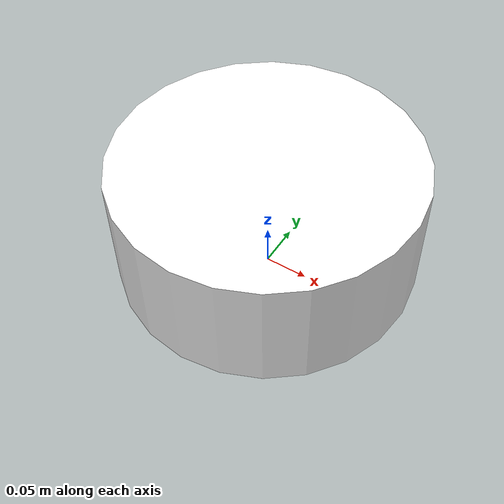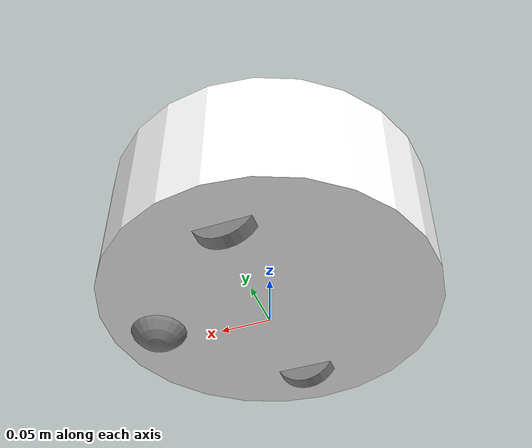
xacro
<?xml version="1.0"?>

<robot name="robot" xmlns:xacro="http://www.ros.org/wiki/xacro">
  <xacro:include filename="inertial_macros.xacro" />

  <material name="white">
   <color rgba="1 1 1 1"/>
  </material>
  <material name="green">
   <color rgba="0 1 0 1"/>
  </material>
  <material name="gray">
   <color rgba="0.5 0.5 0.5 1"/>
  </material>

 <link name="base_footprint"/>

<link name="base_link">
   <visual>
     <geometry>
       <cylinder radius="0.17" length="0.14"/>
     </geometry>
     <origin xyz="0 0 0" rpy="0 0 0"/>
     <material name="white"/>
   </visual>
   <collision>
     <geometry>
       <cylinder radius="0.17" length="0.14"/>
     </geometry>
     <origin xyz="0 0 0" rpy="0 0 0"/>
   </collision>
   <xacro:cylinder_inertia m="4" r="0.17" l="0.14" o_xyz="0 0 0" o_rpy="0 0 0" />
</link>

<!-- Base link -->
 <joint name="base_link_joint" type="fixed">
   <parent link="base_footprint"/>
   <child link="base_link"/>
   <origin xyz="0 0 0.087" rpy="0 0 0"/>
</joint>

<link name="caster_wheel">
   <visual>
      <geometry>
        <sphere radius="0.033"/>
      </geometry>
      <origin xyz="0 0 0" rpy="0 0 0"/>
      <material name="gray"/>
   </visual>
   <collision>
      <geometry>
        <sphere radius="0.033"/>
      </geometry>
      <origin xyz="0 0 0" rpy="0 0 0"/>
   </collision>
   <xacro:sphere_inertia m="0.2" r="0.033" o_xyz="0 0 0" o_rpy="0 0 0" />
</link>

<joint name="caster_wheel_joint" type="fixed">
    <parent link="base_link"/>
    <child link="caster_wheel"/>
    <origin xyz="0.12 0 -0.054" rpy="0 0 0"/>
</joint>

<link name="left_wheel">
  <visual>
      <geometry>
          <cylinder radius="0.033" length="0.015"/>
      </geometry>
      <material name="gray"/>
      <origin xyz="0 0 0" rpy="0 0 0" />
  </visual>
  <collision>
    <geometry>
        <cylinder radius="0.033" length="0.015"/>
    </geometry>
    <origin xyz="0 0 0" rpy="0 0 0" />
</collision>
<xacro:cylinder_inertia m="1" r="0.033" l="0.015" o_xyz="0 0 0" o_rpy="0 0 0" />
</link>

<joint name="left_wheel_joint" type="continuous">
  <parent link="base_link"/>
  <child link="left_wheel"/>
  <origin xyz="0 0.115 -0.054" rpy="1.57 0 0" />
  <axis xyz="0 0 -1"/>
</joint>

<link name="right_wheel">
  <visual>
      <geometry>
          <cylinder radius="0.033" length="0.015"/>
      </geometry>
      <material name="gray"/>
      <origin xyz="0 0 0" rpy="0 0 0" />
  </visual>
  <collision>
    <geometry>
        <cylinder radius="0.033" length="0.015"/>
    </geometry>
    <origin xyz="0 0 0" rpy="0 0 0" />
</collision>
<xacro:cylinder_inertia m="1" r="0.033" l="0.015" o_xyz="0 0 0" o_rpy="0 0 0" />
</link>

<joint name="right_wheel_joint" type="continuous">
  <parent link="base_link"/>
  <child link="right_wheel"/>
  <origin xyz="0 -0.115 -0.054" rpy="1.57 0 0" />
  <axis xyz="0 0 -1"/>
</joint>

</robot>

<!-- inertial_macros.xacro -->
<robot xmlns:xacro="http://www.ros.org/wiki/xacro">

    <xacro:macro name="box_inertia" params="m x y z o_xyz o_rpy">
        <inertial>
            <mass value="${m}" />
            <origin xyz="${o_xyz}" rpy="${o_rpy}" />
            <inertia ixx="${(m/12) * (z*z + y*y)}" ixy="0" ixz="0"
                    iyy="${(m/12) * (x*x + z*z)}" iyz="0"
                    izz="${(m/12) * (x*x + y*y)}" />
        </inertial>
    </xacro:macro>

    <xacro:macro name="cylinder_inertia" params="m r l o_xyz o_rpy">
        <inertial>
            <mass value="${m}" />
            <origin xyz="${o_xyz}" rpy="${o_rpy}" />
            <inertia ixx="${(m/12) * (3*r*r + l*l)}" ixy="0" ixz="0"
                    iyy="${(m/12) * (3*r*r + l*l)}" iyz="0"
                    izz="${(m/2) * (r*r)}" />
        </inertial>
    </xacro:macro>

    <xacro:macro name="sphere_inertia" params="m r o_xyz o_rpy">
        <inertial>
            <mass value="${m}" />
            <origin xyz="${o_xyz}" rpy="${o_rpy}" />
            <inertia ixx="${(2/5) * m * r * r}" ixy="0" ixz="0"
                    iyy="${(2/5) * m * r * r}" iyz="0"
                    izz="${(2/5) * m * r * r}" />
        </inertial>
    </xacro:macro>

</robot>
